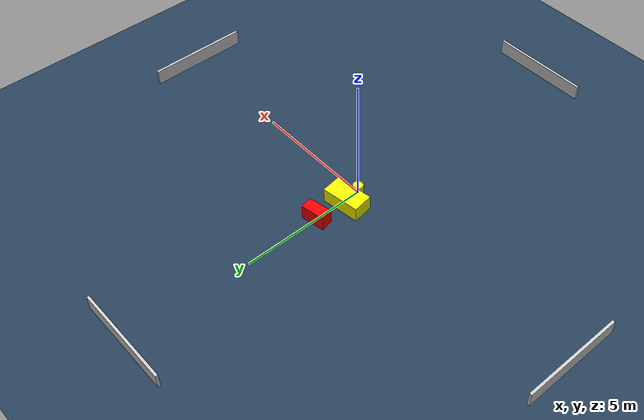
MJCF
<?xml version="1.0" ?>
<mujoco model="generated_environment">
  <option timestep="0.01" integrator="RK4" cone="elliptic"/>
  <default>
    <geom density="1"/>
  </default>
  <asset>
    <texture builtin="gradient" height="3072" name="skybox" rgb1="0.3 0.5 0.7" rgb2="0 0 0" type="skybox" width="512"/>
    <texture builtin="checker" height="300" name="groundplane" rgb1="0.2 0.3 0.4" rgb2="0.1 0.2 0.3" type="2d" width="300"/>
    <material name="groundplane" reflectance="0.2" texrepeat="5 5" texture="groundplane"/>
  </asset>
  <worldbody>
    <light dir="0 0 -1" directional="true" pos="0 0 1.5"/>
    <geom condim="3" friction="0.5 0.005 0.001" material="groundplane" name="floor" pos="0 0 0" size="0 0 0.05" type="plane"/>
    <body name="walls">
      <geom name="wall_1" condim="4" pos="-10.0 0.0 0.3" rgba="0.800000011920929 0.800000011920929 0.800000011920929 1.0" size="0.05 2.0 0.3" type="box"/>
      <geom name="wall_2" condim="4" pos="10.0 0.0 0.3" rgba="0.800000011920929 0.800000011920929 0.800000011920929 1.0" size="0.05 2.0 0.3" type="box"/>
      <geom name="wall_3" condim="4" pos="0.0 -10.0 0.3" rgba="0.800000011920929 0.800000011920929 0.800000011920929 1.0" size="2.0 0.05 0.3" type="box"/>
      <geom name="wall_4" condim="4" pos="0.0 10.0 0.3" rgba="0.800000011920929 0.800000011920929 0.800000011920929 1.0" size="2.0 0.05 0.3" type="box"/>
    </body>
    <body name="robot">
      <joint name="joint_x" type="slide" pos="0 0 0" axis="1 0 0"/>
      <joint name="joint_y" type="slide" pos="0 0 0" axis="0 1 0"/>
      <geom name="robot" type="cylinder" pos="0.0 0.0 0.2" size="0.2 0.2 0.0" mass="5.0" friction="1.0 0.005 0.0001" condim="4" rgba="1.0 1.0 0.0 1.0"/>
    </body>
    <body name="obstacle_1_movable">
      <geom name="obstacle_1_movable" condim="4" pos="-0.17896429609737938 0.6912894446997219 0.3" euler="0 0 188.01400659729893" friction="0.0 0.005 0.001" rgba="1.0 1.0 0.0 1.0" size="0.7558246418865253 0.40217533542616996 0.3" type="box" mass="0.1"/>
      <joint type="free"/>
    </body>
    <body name="obstacle_2_static">
      <geom name="obstacle_2_static" condim="4" pos="-0.005579302022536894 1.983268536766135 0.3" euler="0 0 100.31654452707407" friction="0.0 0.005 0.001" rgba="1.0 0.0 0.0 1.0" size="0.24041529171149467 0.4804373437019913 0.3" type="box"/>
    </body>
  </worldbody>
  <actuator>
    <motor name="actuator_x" joint="joint_x" gear="1" ctrlrange="-1 1"/>
    <motor name="actuator_y" joint="joint_y" gear="1" ctrlrange="-1 1"/>
  </actuator>
</mujoco>
